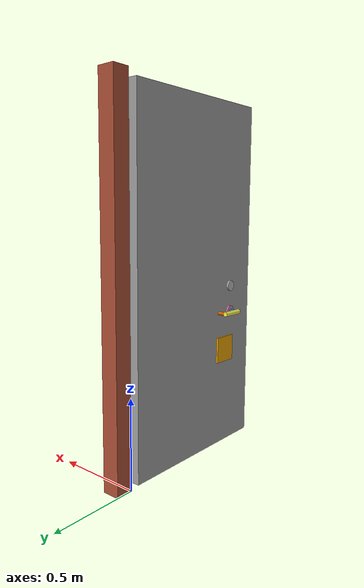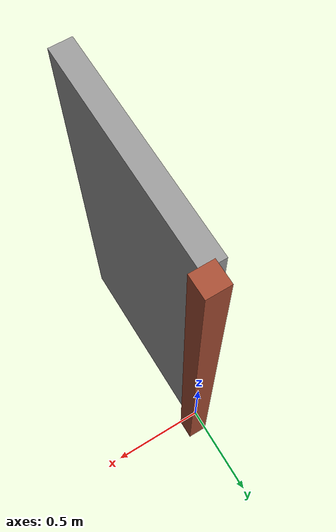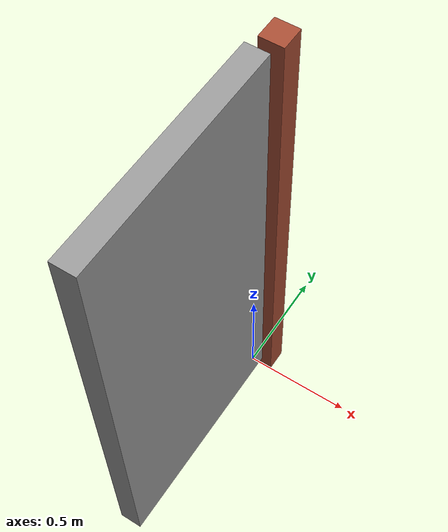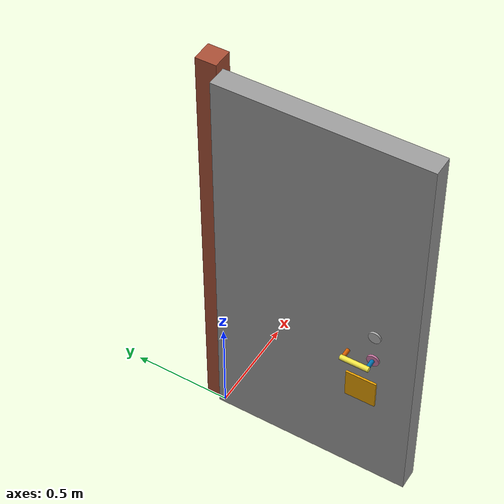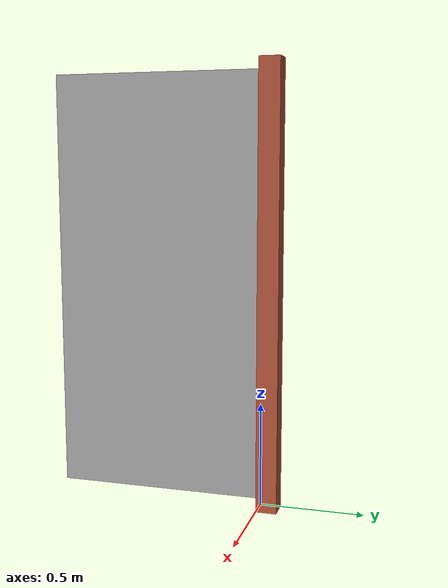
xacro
<?xml version="1.0"?>
<robot name="door" xmlns:xacro="http://www.ros.org/wiki/xacro">

  <xacro:property name="M_PI" value="3.1415926535897931" />
  <xacro:property name="wall_x_loc" value="1.25" />
  <xacro:property name="handle_height" value="0.85" />
  <xacro:property name="handle_length" value="0.14" />

  <link name="world" />

  <!-- Links (wall, door and handle) -->
  <link name="wall1_link">
    <inertial>
      <mass value="1000000" />
      <com xyz="0.05 0.05 1.05" />
      <inertia ixx="100" ixy="0" ixz="0" iyy="100" iyz="0" izz="100" />
    </inertial>
    <visual>
      <origin xyz="0.05 0.05 1.05" rpy="0 0 0" />
      <geometry name="wall1_visual_geom">
        <box size="0.1 0.1 2.1" />
      </geometry>
    </visual>
    <collision>
      <origin xyz="0.05 0.05 1.05" rpy="0.0 0.0 0.0" />
      <geometry name="wall1_collision_geom">
        <box size="0.1 0.1 2.1" />
      </geometry>
    </collision>
  </link>
  <gazebo reference="wall1_link">
    <laserRetro>1000</laserRetro>
    <turnGravityOff>true</turnGravityOff>
    <selfCollide>false</selfCollide>
    <material>Gazebo/Bricks</material>
  </gazebo>

  <link name="door_link">
    <inertial>
      <mass value="1000" />
      <com xyz="0.0 -0.5 1.0" />
      <inertia ixx="1.0" ixy="0.0" ixz="0.0" iyy="1.0" iyz="0.0" izz="3.0" />
    </inertial>
    <visual>
      <origin xyz="0.0 -0.5 1.0" rpy="0 0 ${M_PI}" />
      <geometry name="sholder_roll_mesh_file">
        <box size="0.1 1.0 2.0" />
      </geometry>
    </visual>
    <collision>
      <origin xyz="0.0 -0.5 1.0" rpy="0 0 ${M_PI}" />
      <geometry name="door_collision_geom">
        <box size="0.1 1.0 2.0" />
      </geometry>
    </collision>
  </link>
  <gazebo reference="door_link">
    <laserRetro>2000</laserRetro>
    <turnGravityOff>true</turnGravityOff>
    <selfCollide>false</selfCollide>
    <material>Gazebo/Grey</material>
    <dampingFactor>0.01</dampingFactor>
    <mu1>50.0</mu1>
    <mu2>50.0</mu2>
    <latchJoint>handle_joint</latchJoint>
    <latchAngle>-1.57</latchAngle>
    <doorClosedAngle>0.0</doorClosedAngle>
    <latchKp>200.0</latchKp>
    <latchKd>0.0</latchKd>
    <latchFMax>1000.0</latchFMax>
  </gazebo>

  <link name="handle_link">
    <inertial>
      <mass value="10" />
      <com xyz="0.0 ${handle_length/2-0.01} 0.0" />
      <inertia ixx="0.01" ixy="0.0" ixz="0.0" iyy="0.01" iyz="0.0" izz="0.01" />
    </inertial>
    <visual>
      <origin xyz="0.0 ${handle_length/2-0.01} 0.0" rpy="${1*M_PI/2} 0 0" />
      <geometry name="sholder_roll_mesh_file">
        <cylinder radius="0.013" length="${handle_length}" />
      </geometry>
    </visual>
    <collision>
      <origin xyz="0.0 ${handle_length/2-0.01} 0.0" rpy="${1*M_PI/2} 0 0" />
      <geometry name="handle_collision_geom">
        <cylinder radius="0.013" length="${handle_length}" />
      </geometry>
    </collision>
  </link>
  <gazebo reference="handle_link">
    <laserRetro>3900.0</laserRetro>
    <mu1>50.0</mu1>
    <mu2>50.0</mu2>
    <kp>100000000.0</kp>
    <kd>1.0</kd>
    <turnGravityOff>true</turnGravityOff>
    <selfCollide>false</selfCollide>
    <dampingFactor>0.05</dampingFactor>
  </gazebo>

  <link name="handle1_link">
    <inertial>
      <mass value="0.1" />
      <com xyz="0.0 0.0 0.0" />
      <inertia ixx="0.01" ixy="0.0" ixz="0.0" iyy="0.01" iyz="0.0" izz="0.001" />
    </inertial>
    <visual>
      <origin xyz="0.025 0.0 0.0" rpy="0 ${1*M_PI/2.0} 0" />
      <geometry name="sholder_roll_mesh_file">
        <cylinder radius="0.01" length="0.05" />
      </geometry>
    </visual>
    <collision>
      <origin xyz="0.025 0.0 0.0" rpy="0 ${1*M_PI/2.0} 0" />
      <geometry name="handle1_collision_geom">
        <cylinder radius="0.01" length="0.05" />
      </geometry>
    </collision>
  </link>
  <gazebo reference="handle1_link">
    <laserRetro>3900.0</laserRetro>
    <turnGravityOff>true</turnGravityOff>
    <selfCollide>false</selfCollide>
  </gazebo>

  <link name="handle2_link">
    <inertial>
      <mass value="0.1" />
      <com xyz="0.0 0.0 0.0" />
      <inertia ixx="0.01" ixy="0.0" ixz="0.0" iyy="0.01" iyz="0.0" izz="0.001" />
    </inertial>
    <visual>
      <origin xyz="0.025 0.0 0.0" rpy="0 ${1*M_PI/2.0} 0" />
      <geometry name="sholder_roll_mesh_file">
        <cylinder radius="0.01" length="0.05" />
      </geometry>
    </visual>
    <collision>
      <origin xyz="0.025 0.0 0.0" rpy="0 ${1*M_PI/2.0} 0" />
      <geometry name="handle2_collision_geom">
        <cylinder radius="0.01" length="0.05" />
      </geometry>
    </collision>
  </link>
  <gazebo reference="handle2_link">
    <laserRetro>3900.0</laserRetro>
    <turnGravityOff>true</turnGravityOff>
    <selfCollide>false</selfCollide>
  </gazebo>

  <link name="handle3_link">
    <inertial>
      <mass value="0.1" />
      <com xyz="0.0 0.0 0.0" />
      <inertia ixx="0.01" ixy="0.0" ixz="0.0" iyy="0.01" iyz="0.0" izz="0.001" />
    </inertial>
    <visual>
      <origin xyz="0.06 0.0 0.0" rpy="0 ${1*M_PI/2.0} 0" />
      <geometry name="sholder_roll_mesh_file">
        <cylinder radius="0.03" length="0.02" />
      </geometry>
    </visual>
    <collision>
      <origin xyz="0.06 0.0 0.0" rpy="0 ${1*M_PI/2.0} 0" />
      <geometry name="handle3_collision_geom">
        <cylinder radius="0.03" length="0.02" />
      </geometry>
    </collision>
  </link>
  <gazebo reference="handle3_link">
    <laserRetro>3900.0</laserRetro>
    <turnGravityOff>true</turnGravityOff>
    <selfCollide>false</selfCollide>
  </gazebo>

  <link name="keyhole_link">
    <inertial>
      <mass value="0.1" />
      <com xyz="0.0 0.0 0.0" />
      <inertia ixx="0.01" ixy="0.0" ixz="0.0" iyy="0.01" iyz="0.0" izz="0.001" />
    </inertial>
    <visual>
      <origin xyz="0.0 0.0 0.0" rpy="0 ${1*M_PI/2.0} 0" />
      <geometry name="sholder_roll_mesh_file">
        <cylinder radius="0.03" length="0.02" />
      </geometry>
    </visual>
    <collision>
      <origin xyz="0.0 0.0 0.0" rpy="0 ${1*M_PI/2.0} 0" />
      <geometry name="keyhole_collision_geom">
        <cylinder radius="0.03" length="0.02" />
      </geometry>
    </collision>
  </link>
  <gazebo reference="keyhole_link">
    <laserRetro>3900.0</laserRetro>
    <turnGravityOff>true</turnGravityOff>
    <selfCollide>false</selfCollide>
  </gazebo>

  <!-- Joints (wall, door and handle in 4 parts) -->

  <joint name="wall1_joint" type="fixed">
    <parent link="world" />
    <origin xyz="0 0 0" rpy="0 0 0" />
    <child link="wall1_link" />
  </joint>

  <joint name="door_joint" type="revolute">
    <origin xyz="0 0 0.05" rpy="0 0 0" />
    <axis xyz="0 0 1" />
    <limit lower="${-M_PI/2-0.2}" upper="0.05" effort="1000" velocity="10" />
    <safety_controller soft_lower_limit="${-M_PI/2-0.1}" soft_upper_limit="-0.05" k_position="100.0" k_velocity="10.0" />
    <dynamics damping="1" friction="50" />
    <parent link="wall1_link" />
    <child link="door_link" />
  </joint>

  <joint name="handle_joint" type="revolute">
    <axis xyz="1 0 0" />
    <origin xyz="-0.11 -0.8 ${handle_height-0.05}" rpy="${0*M_PI/2.0} 0 0" />
    <limit lower="${-M_PI/4}" upper="${M_PI/4}" effort="1000" velocity="10" />
    <safety_controller soft_lower_limit="${-M_PI/4+0.01}" soft_upper_limit="${M_PI/4-0.1}" k_position="100.0" k_velocity="10.0" />
    <dynamics damping="10" friction="0.0" />
    <parent link="door_link" />
    <child link="handle_link" />
  </joint>

  <joint name="handle1_joint" type="fixed">
    <parent link="handle_link" />
    <origin xyz="0.0 0.0 0" rpy="0 0 0" />
    <child link="handle1_link" />
  </joint>

  <joint name="handle2_joint" type="fixed">
    <parent link="handle_link" />
    <origin xyz="0.0 0.12 0" rpy="0 0 0" />
    <child link="handle2_link" />
  </joint>

  <joint name="handle3_joint" type="fixed">
    <parent link="handle_link" />
    <origin xyz="0.0 0.0 0" rpy="0 0 0" />
    <child link="handle3_link" />
  </joint>

  <joint name="keyhole_joint" type="fixed">
    <parent link="door_link" />
    <origin xyz="-0.05 -0.8 ${handle_height-0.05+0.15}" rpy="${0*M_PI/2.0} 0 0" />
    <child link="keyhole_link" />
  </joint>

  <!-- AprilTag for handle grasping -->
  <joint name="apriltag_joint" type="fixed">
    <parent link="door_link" />
    <origin xyz="-0.055 -0.75 0.575" rpy="0 1.57 0" />
    <child link="apriltag_link" />
  </joint>
  <link name="apriltag_link">
    <visual>
      <geometry>
        <box size="0.15 0.15 0.01" />
      </geometry>
    </visual>
  </link>
  <gazebo reference="apriltag_link">
    <material>Apriltag36_11_00002</material>
  </gazebo>

  <!-- transmission mechanism controls-->
  <transmission name="door_trans">
    <type>transmission_interface/SimpleTransmission</type>
    <actuator name="door_motor">
      <mechanicalReduction>100</mechanicalReduction>
    </actuator>
    <joint name="door_joint">
      <hardwareInterface>hardware_interface/PositionJointInterface</hardwareInterface>
    </joint>
  </transmission>

  <transmission name="handle_trans">
    <type>transmission_interface/SimpleTransmission</type>
    <actuator name="handle_motor">
      <mechanicalReduction>100</mechanicalReduction>
    </actuator>
    <joint name="handle_joint">
      <hardwareInterface>hardware_interface/PositionJointInterface</hardwareInterface>
    </joint>
  </transmission>

  <gazebo>
      <plugin name="gazebo_ros_control" filename="libgazebo_ros_control.so">
          <legacyModeNS>true</legacyModeNS>
      </plugin>
  </gazebo>

</robot>
